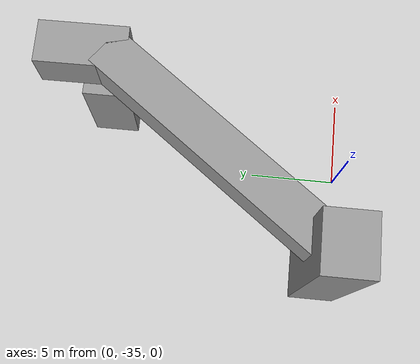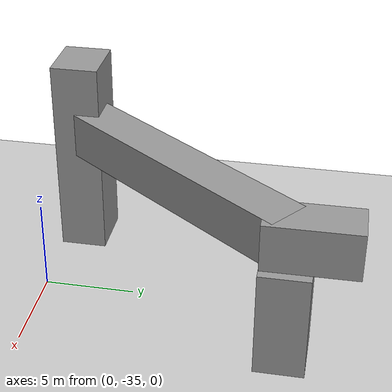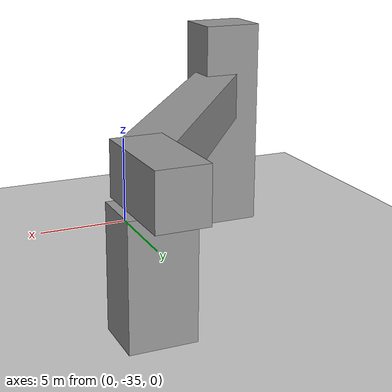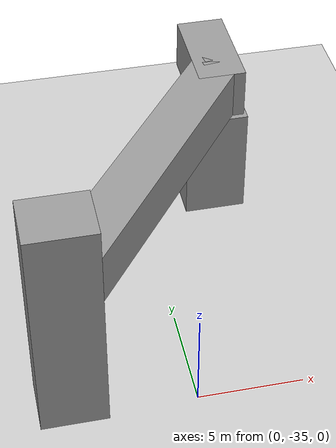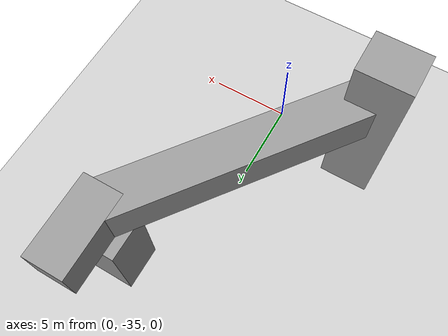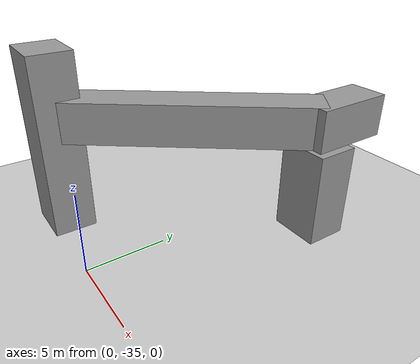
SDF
<sdf version="1.6">
 <world name="default">
  <model name="ground_plane">
   <static>1</static>
   <link name="link">
    <collision name="collision">
     <geometry><plane><normal>0 0 1</normal><size>100 100</size></plane></geometry>
     <surface>
      <contact><collide_bitmask>65535</collide_bitmask></contact>
      <friction><ode><mu>100</mu><mu2>50</mu2></ode></friction>
     </surface>
    </collision>
    <visual name="visual">
     <cast_shadows>0</cast_shadows>
     <geometry><plane><normal>0 0 1</normal><size>100 100</size></plane></geometry>
     <material>
      <script><uri>file://media/materials/scripts/gazebo.material</uri><name>Gazebo/Grey</name></script>
     </material>
    </visual>
   </link>
  </model>
  <model name="Terminal_Tower">
   <link name="link_0">
    <inertial>
     <mass>93.6098</mass>
     <inertia><ixx>1066.2</ixx><ixy>0</ixy><ixz>0</ixz><iyy>1088.59</iyy><iyz>0</iyz><izz>130.143</izz></inertia>
    </inertial>
    <pose>-8.53629 -11.6283 0.909264 0 -0 0</pose>
    <visual name="visual">
     <geometry><box><size>3.1268 2.62801 11.3917</size></box></geometry>
     <material>
      <lighting>1</lighting>
      <script><uri>file://media/materials/scripts/gazebo.material</uri><name>Gazebo/Grey</name></script>
     </material>
    </visual>
    <collision name="collision">
     <geometry><box><size>3.1268 2.62801 11.3917</size></box></geometry>
     <surface>
      <friction>
       <ode><mu>1</mu><mu2>1</mu2><fdir1>0 0 0</fdir1><slip1>0</slip1><slip2>0</slip2></ode>
       <torsional>
        <coefficient>1</coefficient>
        <patch_radius>0</patch_radius>
        <surface_radius>0</surface_radius>
        <use_patch_radius>1</use_patch_radius>
        <ode><slip>0</slip></ode>
       </torsional>
      </friction>
      <bounce><restitution_coefficient>0</restitution_coefficient><threshold>1e+06</threshold></bounce>
      <contact>
       <collide_without_contact>0</collide_without_contact>
       <collide_without_contact_bitmask>1</collide_without_contact_bitmask>
       <collide_bitmask>1</collide_bitmask>
       <ode>
        <soft_cfm>0</soft_cfm>
        <soft_erp>0.2</soft_erp>
        <kp>1e+13</kp>
        <kd>1</kd>
        <max_vel>0.01</max_vel>
        <min_depth>0</min_depth>
       </ode>
       <bullet>
        <split_impulse>1</split_impulse>
        <split_impulse_penetration_threshold>-0.01</split_impulse_penetration_threshold>
        <soft_cfm>0</soft_cfm>
        <soft_erp>0.2</soft_erp>
        <kp>1e+13</kp>
        <kd>1</kd>
       </bullet>
      </contact>
     </surface>
    </collision>
   </link>
   <link name="link_0_clone_0">
    <inertial>
     <mass>48.3325</mass>
     <inertia><ixx>167.156</ixx><ixy>0</ixy><ixz>0</ixz><iyy>178.717</iyy><iyz>0</iyz><izz>67.1956</izz></inertia>
    </inertial>
    <pose>0.95686 1.08421 -1.80811 0 -0 0</pose>
    <visual name="visual">
     <geometry><box><size>3.1268 2.62801 5.88175</size></box></geometry>
     <material>
      <lighting>1</lighting>
      <script><uri>file://media/materials/scripts/gazebo.material</uri><name>Gazebo/Grey</name></script>
      <shader type="pixel"/>
     </material>
    </visual>
    <collision name="collision">
     <geometry><box><size>3.1268 2.62801 5.88175</size></box></geometry>
     <surface>
      <friction>
       <ode><mu>1</mu><mu2>1</mu2><fdir1>0 0 0</fdir1><slip1>0</slip1><slip2>0</slip2></ode>
       <torsional>
        <coefficient>1</coefficient>
        <patch_radius>0</patch_radius>
        <surface_radius>0</surface_radius>
        <use_patch_radius>1</use_patch_radius>
        <ode><slip>0</slip></ode>
       </torsional>
      </friction>
      <bounce><restitution_coefficient>0</restitution_coefficient><threshold>1e+06</threshold></bounce>
      <contact>
       <collide_without_contact>0</collide_without_contact>
       <collide_without_contact_bitmask>1</collide_without_contact_bitmask>
       <collide_bitmask>1</collide_bitmask>
       <ode>
        <soft_cfm>0</soft_cfm>
        <soft_erp>0.2</soft_erp>
        <kp>1e+13</kp>
        <kd>1</kd>
        <max_vel>0.01</max_vel>
        <min_depth>0</min_depth>
       </ode>
       <bullet>
        <split_impulse>1</split_impulse>
        <split_impulse_penetration_threshold>-0.01</split_impulse_penetration_threshold>
        <soft_cfm>0</soft_cfm>
        <soft_erp>0.2</soft_erp>
        <kp>1e+13</kp>
        <kd>1</kd>
       </bullet>
      </contact>
     </surface>
    </collision>
   </link>
   <link name="link_1">
    <inertial>
     <mass>90.2164</mass>
     <inertia><ixx>1758.96</ixx><ixy>0</ixy><ixz>0</ixz><iyy>90.1678</iyy><iyz>0</iyz><izz>1752.4</izz></inertia>
    </inertial>
    <pose>-3.35888 -5.00694 2.59315 0 0 -0.643132</pose>
    <visual name="visual">
     <geometry><box><size>2.35814 15.0842 2.53628</size></box></geometry>
     <material>
      <lighting>1</lighting>
      <script><uri>file://media/materials/scripts/gazebo.material</uri><name>Gazebo/Grey</name></script>
     </material>
    </visual>
    <collision name="collision">
     <geometry><box><size>2.35814 15.0842 2.53628</size></box></geometry>
     <surface>
      <friction>
       <ode><mu>1</mu><mu2>1</mu2><fdir1>0 0 0</fdir1><slip1>0</slip1><slip2>0</slip2></ode>
       <torsional>
        <coefficient>1</coefficient>
        <patch_radius>0</patch_radius>
        <surface_radius>0</surface_radius>
        <use_patch_radius>1</use_patch_radius>
        <ode><slip>0</slip></ode>
       </torsional>
      </friction>
      <bounce><restitution_coefficient>0</restitution_coefficient><threshold>1e+06</threshold></bounce>
      <contact>
       <collide_without_contact>0</collide_without_contact>
       <collide_without_contact_bitmask>1</collide_without_contact_bitmask>
       <collide_bitmask>1</collide_bitmask>
       <ode>
        <soft_cfm>0</soft_cfm>
        <soft_erp>0.2</soft_erp>
        <kp>1e+13</kp>
        <kd>1</kd>
        <max_vel>0.01</max_vel>
        <min_depth>0</min_depth>
       </ode>
       <bullet>
        <split_impulse>1</split_impulse>
        <split_impulse_penetration_threshold>-0.01</split_impulse_penetration_threshold>
        <soft_cfm>0</soft_cfm>
        <soft_erp>0.2</soft_erp>
        <kp>1e+13</kp>
        <kd>1</kd>
       </bullet>
      </contact>
     </surface>
    </collision>
   </link>
   <link name="link_1_clone">
    <inertial>
     <mass>29.1085</mass>
     <inertia><ixx>73.0619</ixx><ixy>0</ixy><ixz>0</ixz><iyy>29.0928</iyy><iyz>0</iyz><izz>70.947</izz></inertia>
    </inertial>
    <pose>1.10584 2.23172 2.59315 0 -0 0.006615</pose>
    <visual name="visual">
     <geometry><box><size>2.35814 4.86694 2.53628</size></box></geometry>
     <material>
      <lighting>1</lighting>
      <script><uri>file://media/materials/scripts/gazebo.material</uri><name>Gazebo/Grey</name></script>
      <shader type="pixel"/>
     </material>
    </visual>
    <collision name="collision">
     <geometry><box><size>2.35814 4.86694 2.53628</size></box></geometry>
     <surface>
      <friction>
       <ode><mu>1</mu><mu2>1</mu2><fdir1>0 0 0</fdir1><slip1>0</slip1><slip2>0</slip2></ode>
       <torsional>
        <coefficient>1</coefficient>
        <patch_radius>0</patch_radius>
        <surface_radius>0</surface_radius>
        <use_patch_radius>1</use_patch_radius>
        <ode><slip>0</slip></ode>
       </torsional>
      </friction>
      <bounce><restitution_coefficient>0</restitution_coefficient><threshold>1e+06</threshold></bounce>
      <contact>
       <collide_without_contact>0</collide_without_contact>
       <collide_without_contact_bitmask>1</collide_without_contact_bitmask>
       <collide_bitmask>1</collide_bitmask>
       <ode>
        <soft_cfm>0</soft_cfm>
        <soft_erp>0.2</soft_erp>
        <kp>1e+13</kp>
        <kd>1</kd>
        <max_vel>0.01</max_vel>
        <min_depth>0</min_depth>
       </ode>
       <bullet>
        <split_impulse>1</split_impulse>
        <split_impulse_penetration_threshold>-0.01</split_impulse_penetration_threshold>
        <soft_cfm>0</soft_cfm>
        <soft_erp>0.2</soft_erp>
        <kp>1e+13</kp>
        <kd>1</kd>
       </bullet>
      </contact>
     </surface>
    </collision>
   </link>
   <static>1</static>
   <pose>2.8506 -22.3707 4.78108 0 -0 0</pose>
  </model>
 </world>
</sdf>
